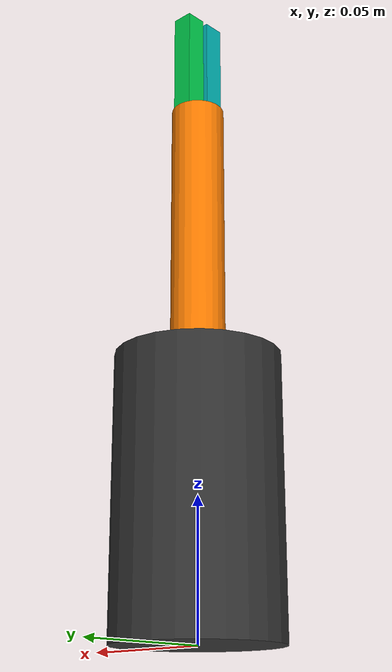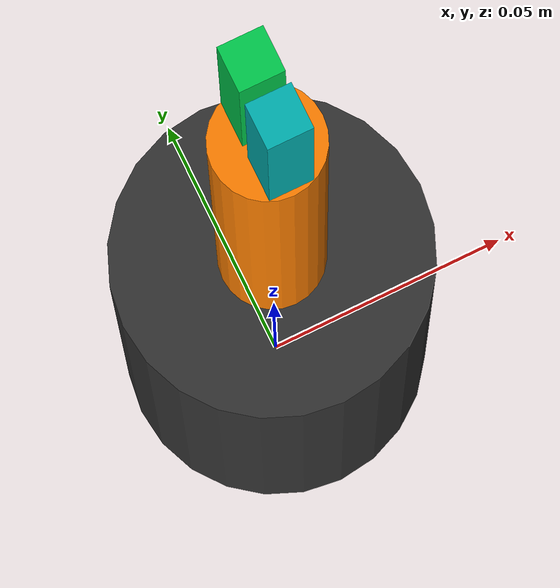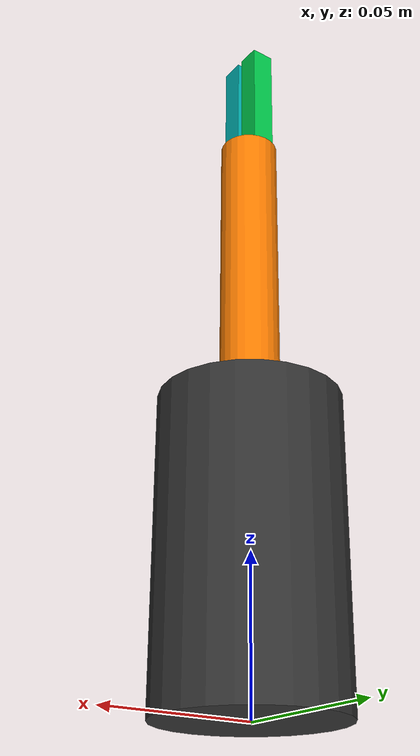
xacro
<?xml version="1.0"?>
<robot name="two_dof_robot">

  <!-- Color Definitions -->
  <material name="dark_grey">
    <color rgba="0.2 0.2 0.2 1.0"/>
  </material>

  <material name="orange">
    <color rgba="1.0 0.5 0.0 1.0"/>
  </material>

  <material name="teal">
    <color rgba="0.0 0.7 0.7 1.0"/>
  </material>

  <material name="bright_green">
    <color rgba="0.0 0.8 0.3 1.0"/>
  </material>

  <!-- Base Link (No visual) -->
  <link name="base_link"/>

  <!-- Link 1 -->
  <link name="link1">
    <visual>
      <origin xyz="0 0 0.05" rpy="0 0 0"/>
      <geometry>
        <cylinder radius="0.03" length="0.10"/>
      </geometry>
      <material name="dark_grey"/>
    </visual>
  </link>

  <!-- Link 2 -->
  <link name="link2">
    <visual>
      <origin xyz="0 0 0.05" rpy="0 0 0"/>
      <geometry>
        <cylinder radius="0.01" length="0.10"/>
      </geometry>
      <material name="orange"/>
    </visual>
  </link>

  <!-- Fixed Left Finger -->
  <link name="left_finger_link">
    <visual>
      <origin xyz="0 0 0.02" rpy="0 0 0"/>
      <geometry>
        <box size="0.008 0.008 0.04"/>
      </geometry>
      <material name="teal"/>
    </visual>
  </link>

  <!-- Moving Right Finger -->
  <link name="right_finger_link">
    <visual>
      <origin xyz="0 0 0.02" rpy="0 0 0"/>
      <geometry>
        <box size="0.008 0.008 0.04"/>
      </geometry>
      <material name="bright_green"/>
    </visual>
  </link>

  <!-- Joint 1: Revolute around Z-axis -->
  <joint name="joint1" type="revolute">
    <axis xyz="0 0 1"/>
    <origin xyz="0 0 0" rpy="0 0 0"/>
    <parent link="base_link"/>
    <child link="link1"/>
    <limit lower="-3.14" upper="3.14" effort="10" velocity="1"/>
  </joint>

  <!-- Joint 2: Revolute around X-axis -->
  <joint name="joint2" type="revolute">
    <axis xyz="1 0 0"/>
    <origin xyz="0 0 0.10" rpy="0 0 0"/>
    <parent link="link1"/>
    <child link="link2"/>
    <limit lower="-1.57" upper="1.57" effort="10" velocity="1"/>
  </joint>

  <!-- Fixed Joint: Attaches the left finger to link2 offset by y = -0.005 -->
  <joint name="left_finger_joint" type="prismatic">
    <axis xyz="0 -1 0"/>
    <origin xyz="0 -0.005 0.10" rpy="0 0 0"/>
    <parent link="link2"/>
    <child link="left_finger_link"/>
    <limit lower="0.0" upper="0.03" effort="5" velocity="0.5"/>
  </joint>

  <!-- Prismatic Joint: Moves the right finger along Y-axis from y = +0.005 outwards -->
  <joint name="right_finger_joint" type="prismatic">
    <axis xyz="0 1 0"/>
    <origin xyz="0 0.005 0.10" rpy="0 0 0"/>
    <parent link="link2"/>
    <child link="right_finger_link"/>
    <limit lower="0.0" upper="0.03" effort="5" velocity="0.5"/>
  </joint>

</robot>
